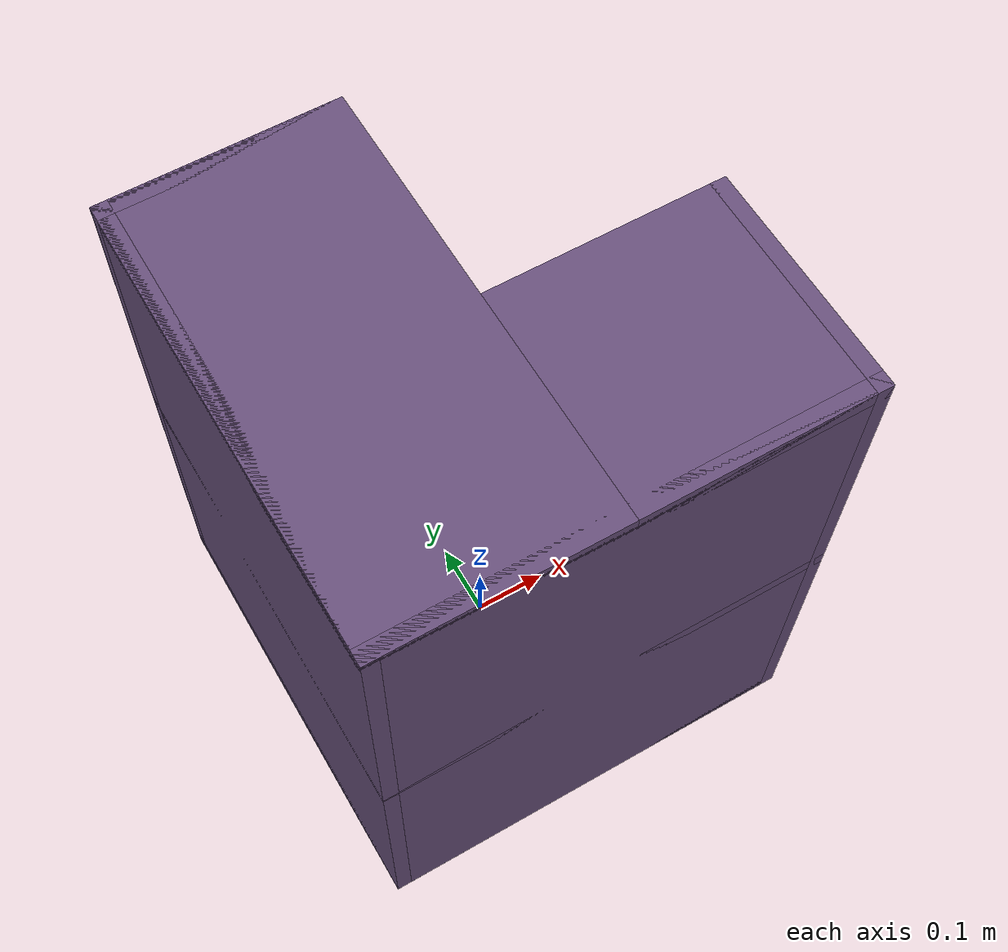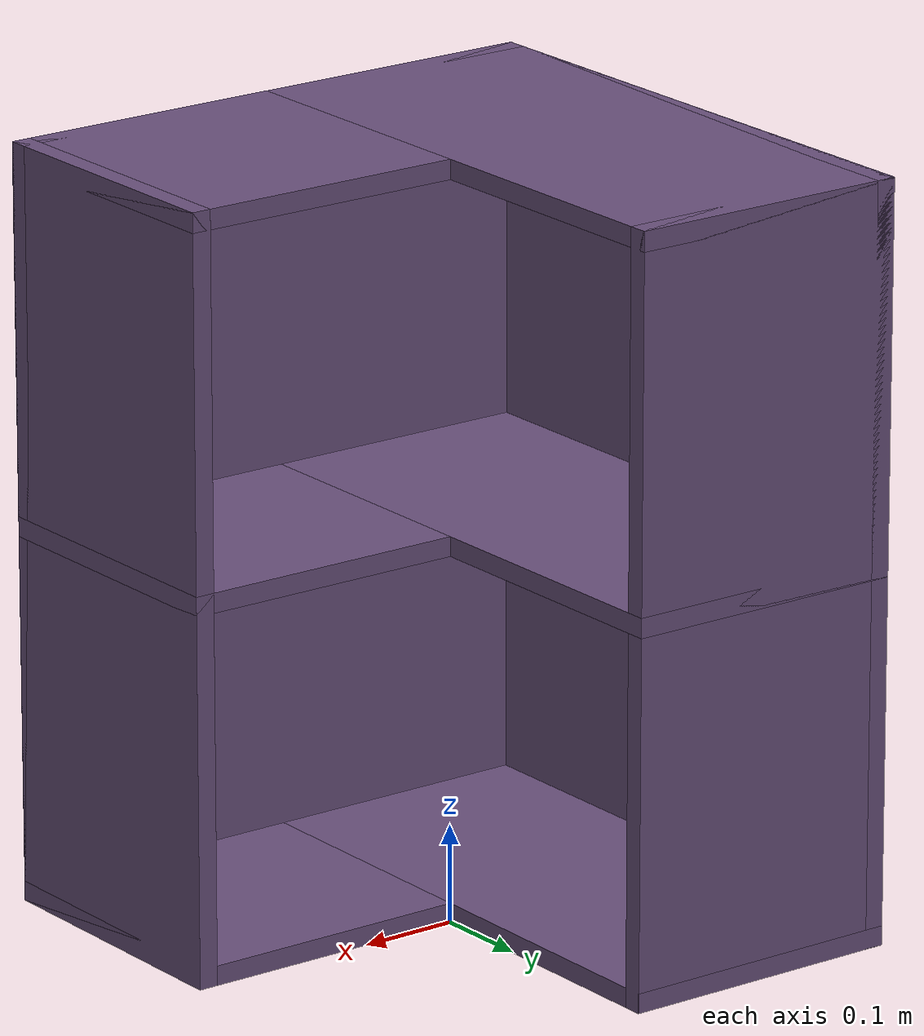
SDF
<?xml version='1.0'?>
<sdf version='1.6'>
   <model name='Wall_Cabinet_Coin_24x30W'>
    <link name='Wall_10'>
     <pose frame=''>0.286 -0.148 0.384 0 0 0</pose>
	<inertial>
	  <mass>2.1259</mass>
	   <inertia>
	     <ixx>0.0158</ixx>
	     <iyy>0.1202</iyy>
	     <izz>0.1046</izz>
    	     <ixy>0</ixy>
	     <ixz>0</ixz>
	     <iyz>0</iyz>
	   </inertia>
	</inertial>
      <collision name='Wall_10_Collision'>
        <geometry>
          <box>
            <size> 0.02 0.296 0.768</size>
          </box>
        </geometry>
      </collision>
      <visual name='Wall_10_Visual'>
        <geometry>
          <box>
            <size>0.02 0.296 0.768</size>
          </box>
        </geometry>
        <material>
          <ambient>0.408 0.314 0.482 1</ambient>
          <diffuse>0.408 0.314 0.482 1</diffuse>
          <specular>0.1 0.1 0.1 1</specular>
        </material>
      </visual>
    </link>

     <joint type="fixed" name="10_16">
      <pose frame=''> 0 0 -0.374 0 0 0</pose>
         <parent>Wall_16</parent>
  	 <child>Wall_10</child>
	 <axis>
	   <xyz>1 0 0</xyz>
	 </axis>
       </joint>
   <joint type="fixed" name="10_14">
          <pose frame=''>0 0 0 0 0 0</pose>
         <parent>Wall_14</parent>
  	 <child>Wall_10</child>
	 <axis>
	   <xyz>1 0 0</xyz>
	 </axis>
       </joint>

   <joint type="fixed" name="10_12">
      <pose frame=''>0 0 0.374 0 0 0</pose>
         <parent>Wall_12</parent>
  	 <child>Wall_10</child>
	 <axis>
	   <xyz>1 0 0</xyz>
	 </axis>
       </joint>

   <joint type="fixed" name="10_29">
      <pose frame=''>0 -0.148 0 0 0 0</pose>
         <parent>Wall_29</parent>
  	 <child>Wall_10</child>
	 <axis>
	   <xyz>1 0 0</xyz>
	 </axis>
       </joint>

    <link name='Wall_12'>
   <pose frame=''>0.148 -0.148 0.758 0 0 0</pose>
	<inertial>
	  <mass>0.8802</mass>
	   <inertia>
	     <ixx>0.0065</ixx>
	     <iyy>0.0139</iyy>
	     <izz>0.0074</izz>
    	     <ixy>0</ixy>
	     <ixz>0</ixz>
	     <iyz>0</iyz>
	   </inertia>
	</inertial>
      <collision name='Wall_12_Collision'>
        <geometry>
          <box>
            <size>0.296 0.296 0.02</size>
          </box>
        </geometry>
      </collision>
      <visual name='Wall_12_Visual'>
        <geometry>
          <box>
            <size>0.296 0.296 0.02</size>
          </box>
        </geometry>
        <material>
          <ambient>0.408 0.314 0.482 1</ambient>
          <diffuse>0.408 0.314 0.482 1</diffuse>
          <specular>0.1 0.1 0.1 1</specular>
        </material>
      </visual>
     </link>

   <joint type="fixed" name="12_29">
      <pose frame=''>0 -0.148 0 0 0 0</pose>
         <parent>Wall_29</parent>
  	 <child>Wall_12</child>
	 <axis>
	   <xyz>0 0 1</xyz>
	 </axis>
       </joint>

    <link name='Wall_14'>
      <pose frame=''>0.148 -0.148 0.384 0 0 0</pose>
	<inertial>
	  <mass>0.8802</mass>
	   <inertia>
	     <ixx>0.0065</ixx>
	     <iyy>0.0139</iyy>
	     <izz>0.0074</izz>
    	     <ixy>0</ixy>
	     <ixz>0</ixz>
	     <iyz>0</iyz>
	   </inertia>
	</inertial>
      <collision name='Wall_14_Collision'>
        <geometry>
          <box>
            <size>0.296 0.296 0.02</size>
          </box>
        </geometry>
      </collision>
      <visual name='Wall_14_Visual'>
        <geometry>
          <box>
            <size>0.296 0.296 0.02</size>
          </box>
        </geometry>
        <material>
          <ambient>0.408 0.314 0.482 1</ambient>
          <diffuse>0.408 0.314 0.482 1</diffuse>
          <specular>0.1 0.1 0.1 1</specular>
        </material>
      </visual>
    </link>

   <joint type="fixed" name="14_29">
      <pose frame=''>0 -0.148 0 0 0 0</pose>
         <parent>Wall_29</parent>
  	 <child>Wall_14</child>
	 <axis>
	   <xyz>0 1 0</xyz>
	 </axis>
       </joint>

    <link name='Wall_16'>
      <pose frame=''>0.148 -0.148 0.01 0 0 0</pose>
	<inertial>
	  <mass>0.8802</mass>
	   <inertia>
	     <ixx>0.0065</ixx>
	     <iyy>0.0139</iyy>
	     <izz>0.0074</izz>
    	     <ixy>0</ixy>
	     <ixz>0</ixz>
	     <iyz>0</iyz>
	   </inertia>
	</inertial>
      <collision name='Wall_16_Collision'>
        <geometry>
          <box>
            <size>0.296 0.296 0.02 </size>
          </box>
        </geometry>
       </collision>
      <visual name='Wall_16_Visual'>
         <geometry>
          <box>
            <size>0.296 0.296 0.02</size>
          </box>
        </geometry>
        <material>
          <ambient>0.408 0.314 0.482 1</ambient>
          <diffuse>0.408 0.314 0.482 1</diffuse>
          <specular>0.1 0.1 0.1 1</specular>
        </material>
      </visual>
    </link>

   <joint type="fixed" name="16_29">
      <pose frame=''>0  -0.148 0 0 0 0</pose>
         <parent>Wall_29</parent>
  	 <child>Wall_16</child>
	 <axis>
	   <xyz>0 1 0</xyz>
	 </axis>
       </joint>

    <link name='Wall_18'>
      <pose frame=''>-0.148 0 0.01 0 0 0</pose>
	<inertial>
	  <mass>1.6525</mass>
	   <inertia>
	     <ixx>0.0491</ixx>
	     <iyy>0.0613</iyy>
	     <izz>0.0123</izz>
    	     <ixy>0</ixy>
	     <ixz>0</ixz>
	     <iyz>0</iyz>
	   </inertia>
	</inertial>
      <collision name='Wall_18_Collision'>
        <geometry>
          <box>
            <size>0.296 0.592 0.02</size>
          </box>
        </geometry>
        </collision>
      <visual name='Wall_18_Visual'>
        <geometry>
          <box>
            <size>0.296 0.592 0.02</size>
          </box>
        </geometry>
        <material>
          <ambient>0.408 0.314 0.482 1</ambient>
          <diffuse>0.408 0.314 0.482 1</diffuse>
          <specular>0.1 0.1 0.1 1</specular>
        </material>
      </visual>
    </link>

  <joint type="fixed" name="18_16">
      <pose frame=''> 0.148 -0.148 0 0 0 0</pose>
         <parent>Wall_16</parent>
  	 <child>Wall_18</child>
	 <axis>
	   <xyz>1 0 0</xyz>
	 </axis>
       </joint>

   <joint type="fixed" name="18_29">
          <pose frame=''>0 -0.296 0 0 0 0</pose>
         <parent>Wall_29</parent>
  	 <child>Wall_18</child>
	 <axis>
	   <xyz>0 1 0</xyz>
	 </axis>
       </joint>

   <joint type="fixed" name="18_27">
      <pose frame=''>-0.148 0 0 0 0 0</pose>
         <parent>Wall_27</parent>
  	 <child>Wall_18</child>
	 <axis>
	   <xyz>1 0 0</xyz>
	 </axis>
       </joint>

   <joint type="fixed" name="18_30">
      <pose frame=''>0 0.296 0 0 0 0</pose>
         <parent>Wall_30</parent>
  	 <child>Wall_18</child>
	 <axis>
	   <xyz>0 1 0</xyz>
	 </axis>
       </joint>

    <link name='Wall_20'>
      <pose frame=''>-0.148 0 0.384 0 0 0</pose>
	<inertial>
	  <mass>1.6525</mass>
	   <inertia>
	     <ixx>0.0491</ixx>
	     <iyy>0.0613</iyy>
	     <izz>0.0123</izz>
    	     <ixy>0</ixy>
	     <ixz>0</ixz>
	     <iyz>0</iyz>
	   </inertia>
	</inertial>
      <collision name='Wall_20_Collision'>
        <geometry>
          <box>
            <size>0.296 0.592 0.02</size>
          </box>
        </geometry>
      </collision>
      <visual name='Wall_20_Visual'>
        <geometry>
          <box>
            <size>0.296 0.592 0.02</size>
          </box>
        </geometry>
        <material>
          <ambient>0.408 0.314 0.482 1</ambient>
          <diffuse>0.408 0.314 0.482 1</diffuse>
          <specular>0.1 0.1 0.1 1</specular>
        </material>
      </visual>
    </link>

<joint type="fixed" name="20_14">
      <pose frame=''> 0.148 -0.148 0 0 0 0</pose>
         <parent>Wall_14</parent>
  	 <child>Wall_20</child>
	 <axis>
	   <xyz>1 0 0</xyz>
	 </axis>
       </joint>

   <joint type="fixed" name="20_29">
          <pose frame=''>0  -0.296 0 0 0 0</pose>
         <parent>Wall_29</parent>
  	 <child>Wall_20</child>
	 <axis>
	   <xyz>0 1 0</xyz>
	 </axis>
       </joint>

   <joint type="fixed" name="20_27">
      <pose frame=''>-0.148 0 0 0 0 0</pose>
         <parent>Wall_27</parent>
  	 <child>Wall_20</child>
	 <axis>
	   <xyz>1 0 0</xyz>
	 </axis>
       </joint>

   <joint type="fixed" name="20_30">
      <pose frame=''>0 0.296 0 0 0 0</pose>
         <parent>Wall_30</parent>
  	 <child>Wall_20</child>
	 <axis>
	   <xyz>0 1 0</xyz>
	 </axis>
       </joint>

    <link name='Wall_22'>
      <pose frame=''>-0.148 0 0.758 0 0 0</pose>
	<inertial>
	  <mass>1.6525</mass>
	   <inertia>
	     <ixx>0.0491</ixx>
	     <iyy>0.0613</iyy>
	     <izz>0.0123</izz>
    	     <ixy>0</ixy>
	     <ixz>0</ixz>
	     <iyz>0</iyz>
	   </inertia>
	</inertial>
      <collision name='Wall_22_Collision'>
        <geometry>
          <box>
            <size>0.296 0.592 0.02</size>
          </box>
        </geometry>
      </collision>
      <visual name='Wall_22_Visual'>
        <geometry>
          <box>
            <size>0.296 0.592 0.02</size>
          </box>
        </geometry>
        <material>
          <ambient>0.408 0.314 0.482 1</ambient>
          <diffuse>0.408 0.314 0.482 1</diffuse>
          <specular>0.1 0.1 0.1 1</specular>
        </material>
      </visual>
    </link>

<joint type="fixed" name="22_12">
      <pose frame=''> 0.148 -0.148 0 0 0 0</pose>
         <parent>Wall_12</parent>
  	 <child>Wall_22</child>
	 <axis>
	   <xyz>1 0 0</xyz>
	 </axis>
       </joint>

   <joint type="fixed" name="22_29">
          <pose frame=''>0 -0.296 0 0 0 0</pose>
         <parent>Wall_29</parent>
  	 <child>Wall_22</child>
	 <axis>
	   <xyz>0 1 0</xyz>
	 </axis>
       </joint>

   <joint type="fixed" name="22_27">
      <pose frame=''>-0.148 0 0 0 0 0</pose>
         <parent>Wall_27</parent>
  	 <child>Wall_22</child>
	 <axis>
	   <xyz>1 0 0</xyz>
	 </axis>
       </joint>

   <joint type="fixed" name="22_30">
      <pose frame=''>0 0.296 0 0 0 0</pose>
         <parent>Wall_30</parent>
  	 <child>Wall_22</child>
	 <axis>
	   <xyz>0 1 0</xyz>
	 </axis>
       </joint>

    <link name='Wall_27'>
      <pose frame=''>-0.286 0 0.384 0 0 0</pose>
	<inertial>
	  <mass>4.2589</mass>
	   <inertia>
	     <ixx>0.1266</ixx>
	     <iyy>0.3358</iyy>
	     <izz>0.2095</izz>
    	     <ixy>0</ixy>
	     <ixz>0</ixz>
	     <iyz>0</iyz>
	   </inertia>
	</inertial>
      <collision name='Wall_27_Collision'>
        <geometry>
          <box>
            <size>0.02 0.592 0.768</size>
          </box>
        </geometry>
      </collision>
      <visual name='Wall_27_Visual'>
        <geometry>
          <box>
            <size>0.02 0.592 0.768</size>
          </box>
        </geometry>
        <material>
          <ambient>0.408 0.314 0.482 1</ambient>
          <diffuse>0.408 0.314 0.482 1</diffuse>
          <specular>0.1 0.1 0.1 1</specular>
        </material>
      </visual>
    </link>

   <joint type="fixed" name="27_30">
      <pose frame=''>0 0.296 0 0 0 0</pose>
         <parent>Wall_30</parent>
  	 <child>Wall_27</child>
	 <axis>
	   <xyz>0 1 0</xyz>
	 </axis>
       </joint>

    <link name='Wall_29'>
     <pose frame=''>0 -0.286 0.384 0 0 0</pose>
	<inertial>
	  <mass>4.3176</mass>
	   <inertia>
	     <ixx>0.1340</ixx>
	     <iyy>0.2091</iyy>
	     <izz>0.3428</izz>
    	     <ixy>0</ixy>
	     <ixz>0</ixz>
	     <iyz>0</iyz>
	   </inertia>
	</inertial>
      <collision name='Wall_29_Collision'>
        <geometry>
          <box>
            <size> 0.592 0.02 0.768</size>
          </box>
        </geometry>
       </collision>
      <visual name='Wall_29_Visual'>
         <geometry>
          <box>
            <size>0.592 0.02 0.768</size>
          </box>
        </geometry>
        <material>
          <ambient>0.408 0.314 0.482 1</ambient>
          <diffuse>0.408 0.314 0.482 1</diffuse>
          <specular>0.1 0.1 0.1 1</specular>
        </material>
      </visual>
     </link>

 <link name='Wall_30'>
      <pose frame=''>-0.148 0.286 0.384 0 0 0</pose>
	<inertial>
	  <mass>2.1093</mass>
	   <inertia>
	     <ixx>0.1021</ixx>
	     <iyy>0.0157</iyy>
	     <izz>0.1177</izz>
    	     <ixy>0</ixy>
	     <ixz>0</ixz>
	     <iyz>0</iyz>
	   </inertia>
	</inertial>
      <collision name='Wall_30_Collision'>
        <geometry>
          <box>
            <size>0.296  0.02 0.768</size>
          </box>
        </geometry>
       </collision>
      <visual name='Wall_30_Visual'>
        <geometry>
          <box>
            <size>0.296  0.02 0.768</size>
          </box>
        </geometry>
        <material>
          <ambient>0.408 0.314 0.482 1</ambient>
          <diffuse>0.408 0.314 0.482 1</diffuse>
          <specular>0.1 0.1 0.1 1</specular>
        </material>
      </visual>
    </link>

    <static>1</static>
  </model>
</sdf>
